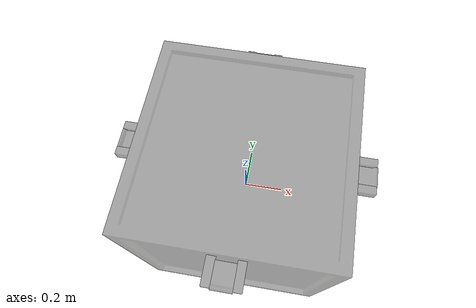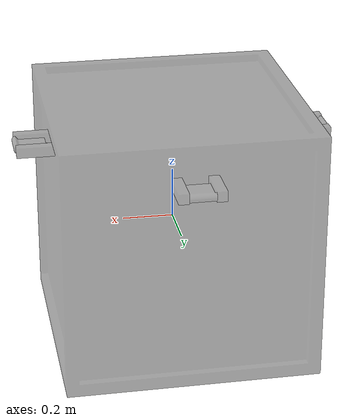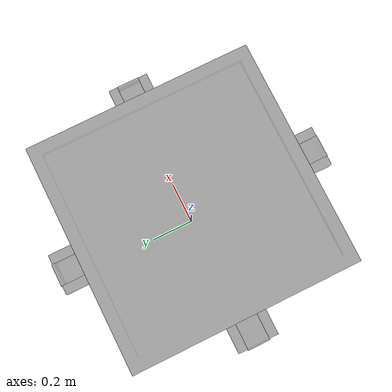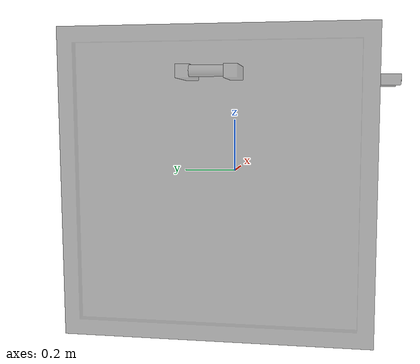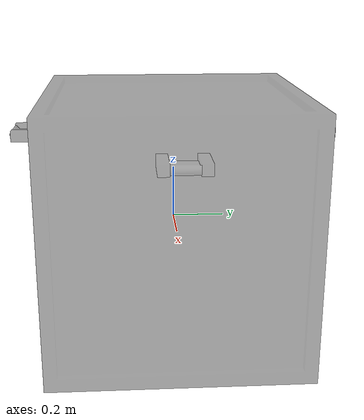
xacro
<?xml version="1.0"?>

<robot name="box_description" xmlns:xacro="http://www.ros.org/wiki/xacro">
  <!-- Define properties -->
  <xacro:property name="box_mass" value="1"/>
  <xacro:property name="box_size" value="1"/>
  <xacro:property name="handle_radius" value="0.015"/>
  <xacro:property name="handle_length" value="0.14"/>
  <xacro:property name="handle_offset" value="0.6"/>

  <!-- Material definitions -->
  <material name="dark_gray">
    <color rgba="0.3 0.3 0.3 0.5"/>
  </material>

  <!-- Box link -->
  <link name="box">
    <inertial>
      <mass value="${box_mass}"/>
      <origin xyz="0 0 0" rpy="0 0 0"/>
      <inertia ixx="0.16670" ixy="0.0" ixz="0.0" iyy="0.16670" iyz="0.0" izz="0.16670"/>
    </inertial>
    <visual>
      <geometry>
        <mesh filename="package://ocs2_multi_robot/assets/robot/b1z1_description/meshes/box.stl"/>
      </geometry>
      <origin xyz="0 0 0" rpy="0 0 0"/>
      <material name="dark_gray"/>
    </visual>
    <collision>
      <geometry>
        <mesh filename="package://ocs2_multi_robot/assets/robot/b1z1_description/meshes/box.stl"/>
      </geometry>
      <origin xyz="0 0 0" rpy="0 0 0"/>
    </collision>
  </link>

  <!-- Add an IMU sensor to the box -->

  <joint name="imu_joint" type="fixed">
      <parent link="box"/>
      <child link="box_imu_link"/>
      <origin rpy="0 0 0" xyz="0 0 0"/>
  </joint>

  <link name="box_imu_link">
      <inertial>
          <mass value="0.001"/>
          <origin rpy="0 0 0" xyz="0 0 0"/>
          <inertia ixx="0.0001" ixy="0" ixz="0" iyy="0.0001" iyz="0" izz="0.0001"/>
      </inertial>
      <visual>
          <origin rpy="0 0 0" xyz="0 0 0"/>
          <geometry>
              <box size="0.001 0.001 0.001"/>
          </geometry>
          <material name="red"/>
      </visual>
      <collision>
          <origin rpy="0 0 0" xyz="0 0 0"/>
          <geometry>
              <box size=".001 .001 .001"/>
          </geometry>
      </collision>
  </link>

  <gazebo reference="box_imu_link">
      <gravity>true</gravity>
      <sensor name="imu_sensor" type="imu">
          <always_on>true</always_on>
          <update_rate>1000</update_rate>
          <visualize>true</visualize>
          <topic>__default_topic__</topic>
          <plugin filename="libgazebo_ros_imu_sensor.so" name="imu_plugin">
              <topicName>cargo_imu</topicName>
              <bodyName>imu_link</bodyName>
              <updateRateHZ>1000.0</updateRateHZ>
              <gaussianNoise>0.0</gaussianNoise>
              <xyzOffset>0 0 0</xyzOffset>
              <rpyOffset>0 0 0</rpyOffset>
              <frameName>imu_link</frameName>
          </plugin>
          <pose>0 0 0 0 0 0</pose>
      </sensor>
  </gazebo>

  <!-- Left handle -->
  <link name="left_handle">
    <inertial>
      <mass value="0.01"/>
      <origin xyz="0 0 0" rpy="1.5708 0 1.5708"/>
      <inertia ixx="0.001" ixy="0.0" ixz="0.0" iyy="0.001" iyz="0.0" izz="0.001"/>
    </inertial>
    <visual>
      <geometry>
        <mesh filename="package://ocs2_multi_robot/assets/robot/b1z1_description/meshes/handle.STL" scale="0.001 0.001 0.001"/>
      </geometry>
      <origin xyz="0 0 0" rpy="1.5708 0 1.5708"/>
      <material name="dark_gray"/>
    </visual>
    <collision>
      <geometry>
        <mesh filename="package://ocs2_multi_robot/assets/robot/b1z1_description/meshes/handle.STL" scale="0.001 0.001 0.001"/>
      </geometry>
      <origin xyz="0 0 0" rpy="1.5708 0 1.5708"/>
    </collision>
  </link>

  <!-- Add Gazebo friction properties -->
  <gazebo reference="left_handle">
    <material>Gazebo/DarkGrey</material>
    <mu1>1.5</mu1>          <!-- Friction coefficient in first direction -->
    <mu2>1.5</mu2>          <!-- Friction coefficient in second direction -->
    <kp>1000000.0</kp>      <!-- Contact stiffness -->
    <kd>100.0</kd>          <!-- Contact damping -->
    <minDepth>0.001</minDepth>
    <maxVel>0.1</maxVel>
  </gazebo>

  <!-- Right handle -->
  <link name="right_handle">
    <inertial>
      <mass value="0.01"/>
      <origin xyz="0 0 0" rpy="1.5708 0 -1.5708"/>
      <inertia ixx="0.001" ixy="0.0" ixz="0.0" iyy="0.001" iyz="0.0" izz="0.001"/>
    </inertial>
    <visual>
      <geometry>
        <mesh filename="package://ocs2_multi_robot/assets/robot/b1z1_description/meshes/handle.STL" scale="0.001 0.001 0.001"/>
      </geometry>
      <origin xyz="0 0 0" rpy="1.5708 0 -1.5708"/>
      <material name="dark_gray"/>
    </visual>
    <collision>
      <geometry>
        <mesh filename="package://ocs2_multi_robot/assets/robot/b1z1_description/meshes/handle.STL" scale="0.001 0.001 0.001"/>
      </geometry>
      <origin xyz="0 0 0" rpy="1.5708 0 -1.5708"/>
    </collision>
  </link>

    <!-- Add Gazebo friction properties -->
  <gazebo reference="right_handle">
    <material>Gazebo/DarkGrey</material>
    <mu1>1.5</mu1>          <!-- Friction coefficient in first direction -->
    <mu2>1.5</mu2>          <!-- Friction coefficient in second direction -->
    <kp>1000000.0</kp>      <!-- Contact stiffness -->
    <kd>100.0</kd>          <!-- Contact damping -->
    <minDepth>0.001</minDepth>
    <maxVel>0.1</maxVel>
  </gazebo>

  <!-- Left handle end cube 1 -->
  <link name="left_handle_cube1">
    <inertial>
      <mass value="0.001"/>
      <origin xyz="0 0 0" rpy="0 0 0"/>
      <inertia ixx="0.0001" ixy="0.0" ixz="0.0" iyy="0.0001" iyz="0.0" izz="0.0001"/>
    </inertial>
    <visual>
      <geometry>
        <box size="0.15 0.04 0.04"/>
      </geometry>
      <origin xyz="0.055 0 0" rpy="0 0 0"/>
      <material name="dark_gray"/>
    </visual>
    <collision>
      <geometry>
        <box size="0.15 0.04 0.04"/>
      </geometry>
      <origin xyz="0.055 0 0" rpy="0 0 0"/>
    </collision>
  </link>

  <!-- Left handle end cube 2 -->
  <link name="left_handle_cube2">
    <inertial>
      <mass value="0.001"/>
      <origin xyz="0 0 0" rpy="0 0 0"/>
      <inertia ixx="0.0001" ixy="0.0" ixz="0.0" iyy="0.0001" iyz="0.0" izz="0.0001"/>
    </inertial>
    <visual>
      <geometry>
        <box size="0.15 0.04 0.04"/>
      </geometry>
      <origin xyz="0.055 0 0" rpy="0 0 0"/>
      <material name="dark_gray"/>
    </visual>
    <collision>
      <geometry>
        <box size="0.15 0.04 0.04"/>
      </geometry>
      <origin xyz="0.055 0 0" rpy="0 0 0"/>
    </collision>
  </link>

  <!-- Right handle end cube 1 -->
  <link name="right_handle_cube1">
    <inertial>
      <mass value="0.001"/>
      <origin xyz="0 0 0" rpy="0 0 0"/>
      <inertia ixx="0.0001" ixy="0.0" ixz="0.0" iyy="0.0001" iyz="0.0" izz="0.0001"/>
    </inertial>
    <visual>
      <geometry>
        <box size="0.15 0.04 0.04"/>
      </geometry>
      <origin xyz="-0.055 0 0" rpy="0 0 0"/>
      <material name="dark_gray"/>
    </visual>
    <collision>
      <geometry>
        <box size="0.15 0.04 0.04"/>
      </geometry>
      <origin xyz="-0.055 0 0" rpy="0 0 0"/>
    </collision>
  </link>

  <!-- Right handle end cube 2 -->
  <link name="right_handle_cube2">
    <inertial>
      <mass value="0.001"/>
      <origin xyz="0 0 0" rpy="0 0 0"/>
      <inertia ixx="0.0001" ixy="0.0" ixz="0.0" iyy="0.0001" iyz="0.0" izz="0.0001"/>
    </inertial>
    <visual>
      <geometry>
        <box size="0.15 0.04 0.04"/>
      </geometry>
      <origin xyz="-0.055 0 0" rpy="0 0 0"/>
      <material name="dark_gray"/>
    </visual>
    <collision>
      <geometry>
        <box size="0.15 0.04 0.04"/>
      </geometry>
      <origin xyz="-0.055 0 0" rpy="0 0 0"/>
    </collision>
  </link>

  <!-- Front handle -->
  <link name="front_handle">
    <inertial>
      <mass value="0.01"/>
      <origin xyz="0 0 0" rpy="1.5708 0 0"/>
      <inertia ixx="0.001" ixy="0.0" ixz="0.0" iyy="0.001" iyz="0.0" izz="0.001"/>
    </inertial>
    <visual>
      <geometry>
        <mesh filename="package://ocs2_multi_robot/assets/robot/b1z1_description/meshes/handle.STL" scale="0.001 0.001 0.001"/>
      </geometry>
      <origin xyz="0 0 0" rpy="1.5708 0 0"/>
      <material name="dark_gray"/>
    </visual>
    <collision>
      <geometry>
        <mesh filename="package://ocs2_multi_robot/assets/robot/b1z1_description/meshes/handle.STL" scale="0.001 0.001 0.001"/>
      </geometry>
      <origin xyz="0 0 0" rpy="1.5708 0 0"/>
    </collision>
  </link>

  <gazebo reference="front_handle">
    <material>Gazebo/DarkGrey</material>
    <mu1>1.5</mu1>
    <mu2>1.5</mu2>
    <kp>1000000.0</kp>
    <kd>100.0</kd>
    <minDepth>0.001</minDepth>
    <maxVel>0.1</maxVel>
  </gazebo>

  <!-- Back handle -->
  <link name="back_handle">
    <inertial>
      <mass value="0.01"/>
      <origin xyz="0 0 0" rpy="1.5708 0 3.14159"/>
      <inertia ixx="0.001" ixy="0.0" ixz="0.0" iyy="0.001" iyz="0.0" izz="0.001"/>
    </inertial>
    <visual>
      <geometry>
        <mesh filename="package://ocs2_multi_robot/assets/robot/b1z1_description/meshes/handle.STL" scale="0.001 0.001 0.001"/>
      </geometry>
      <origin xyz="0 0 0" rpy="1.5708 0 3.14159"/>
      <material name="dark_gray"/>
    </visual>
    <collision>
      <geometry>
        <mesh filename="package://ocs2_multi_robot/assets/robot/b1z1_description/meshes/handle.STL" scale="0.001 0.001 0.001"/>
      </geometry>
      <origin xyz="0 0 0" rpy="1.5708 0 3.14159"/>
    </collision>
  </link>

  <gazebo reference="back_handle">
    <material>Gazebo/DarkGrey</material>
    <mu1>1.5</mu1>
    <mu2>1.5</mu2>
    <kp>1000000.0</kp>
    <kd>100.0</kd>
    <minDepth>0.001</minDepth>
    <maxVel>0.1</maxVel>
  </gazebo>

  <!-- Front handle end cube 1 -->
  <link name="front_handle_cube1">
    <inertial>
      <mass value="0.001"/>
      <origin xyz="0 0 0" rpy="0 0 0"/>
      <inertia ixx="0.0001" ixy="0.0" ixz="0.0" iyy="0.0001" iyz="0.0" izz="0.0001"/>
    </inertial>
    <visual>
      <geometry>
        <box size="0.04 0.15 0.04"/>
      </geometry>
      <origin xyz="0 -0.055 0" rpy="0 0 0"/>
      <material name="dark_gray"/>
    </visual>
    <collision>
      <geometry>
        <box size="0.04 0.15 0.04"/>
      </geometry>
      <origin xyz="0 -0.055 0" rpy="0 0 0"/>
    </collision>
  </link>

  <!-- Front handle end cube 2 -->
  <link name="front_handle_cube2">
    <inertial>
      <mass value="0.001"/>
      <origin xyz="0 0 0" rpy="0 0 0"/>
      <inertia ixx="0.0001" ixy="0.0" ixz="0.0" iyy="0.0001" iyz="0.0" izz="0.0001"/>
    </inertial>
    <visual>
      <geometry>
        <box size="0.04 0.15 0.04"/>
      </geometry>
      <origin xyz="0 -0.055 0" rpy="0 0 0"/>
      <material name="dark_gray"/>
    </visual>
    <collision>
      <geometry>
        <box size="0.04 0.15 0.04"/>
      </geometry>
      <origin xyz="0 -0.055 0" rpy="0 0 0"/>
    </collision>
  </link>

  <!-- Back handle end cube 1 -->
  <link name="back_handle_cube1">
    <inertial>
      <mass value="0.001"/>
      <origin xyz="0 0 0" rpy="0 0 0"/>
      <inertia ixx="0.0001" ixy="0.0" ixz="0.0" iyy="0.0001" iyz="0.0" izz="0.0001"/>
    </inertial>
    <visual>
      <geometry>
        <box size="0.04 0.15 0.04"/>
      </geometry>
      <origin xyz="0 0.055 0" rpy="0 0 0"/>
      <material name="dark_gray"/>
    </visual>
    <collision>
      <geometry>
        <box size="0.04 0.15 0.04"/>
      </geometry>
      <origin xyz="0 0.055 0" rpy="0 0 0"/>
    </collision>
  </link>

  <!-- Back handle end cube 2 -->
  <link name="back_handle_cube2">
    <inertial>
      <mass value="0.001"/>
      <origin xyz="0 0 0" rpy="0 0 0"/>
      <inertia ixx="0.0001" ixy="0.0" ixz="0.0" iyy="0.0001" iyz="0.0" izz="0.0001"/>
    </inertial>
    <visual>
      <geometry>
        <box size="0.04 0.15 0.04"/>
      </geometry>
      <origin xyz="0 0.055 0" rpy="0 0 0"/>
      <material name="dark_gray"/>
    </visual>
    <collision>
      <geometry>
        <box size="0.04 0.15 0.04"/>
      </geometry>
      <origin xyz="0 0.055 0" rpy="0 0 0"/>
    </collision>
  </link>

  <!-- Joints -->
  <joint name="left_handle_joint" type="fixed">
    <parent link="box"/>
    <child link="left_handle"/>
    <origin xyz="${-handle_offset} 0 0.35" rpy="0 0 0"/>
    <dynamics friction="0.8"/>
  </joint>

  <joint name="right_handle_joint" type="fixed">
    <parent link="box"/>
    <child link="right_handle"/>
    <origin xyz="${handle_offset} 0 0.35" rpy="0 0 0"/>
    <dynamics friction="0.8"/>
  </joint>

  <joint name="front_handle_joint" type="fixed">
    <parent link="box"/>
    <child link="front_handle"/>
    <origin xyz="0 ${handle_offset} 0.35" rpy="0 0 0"/>
    <dynamics friction="0.8"/>
  </joint>

  <joint name="back_handle_joint" type="fixed">
    <parent link="box"/>
    <child link="back_handle"/>
    <origin xyz="0 ${-handle_offset} 0.35" rpy="0 0 0"/>
    <dynamics friction="0.8"/>
  </joint>

  <!-- Left handle cube joints -->
  <joint name="left_handle_cube1_joint" type="fixed">
    <parent link="left_handle"/>
    <child link="left_handle_cube1"/>
    <origin xyz="0 ${handle_length/2} 0" rpy="0 0 0"/>
  </joint>

  <joint name="left_handle_cube2_joint" type="fixed">
    <parent link="left_handle"/>
    <child link="left_handle_cube2"/>
    <origin xyz="0 ${-handle_length/2} 0" rpy="0 0 0"/>
  </joint>

  <!-- Right handle cube joints -->
  <joint name="right_handle_cube1_joint" type="fixed">
    <parent link="right_handle"/>
    <child link="right_handle_cube1"/>
    <origin xyz="0 ${handle_length/2} 0" rpy="0 0 0"/>
  </joint>

  <joint name="right_handle_cube2_joint" type="fixed">
    <parent link="right_handle"/>
    <child link="right_handle_cube2"/>
    <origin xyz="0 ${-handle_length/2} 0" rpy="0 0 0"/>
  </joint>

  <!-- Front handle cube joints -->
  <joint name="front_handle_cube1_joint" type="fixed">
    <parent link="front_handle"/>
    <child link="front_handle_cube1"/>
    <origin xyz="${handle_length/2} 0 0" rpy="0 0 0"/>
  </joint>

  <joint name="front_handle_cube2_joint" type="fixed">
    <parent link="front_handle"/>
    <child link="front_handle_cube2"/>
    <origin xyz="${-handle_length/2} 0 0" rpy="0 0 0"/>
  </joint>

  <!-- Back handle cube joints -->
  <joint name="back_handle_cube1_joint" type="fixed">
    <parent link="back_handle"/>
    <child link="back_handle_cube1"/>
    <origin xyz="${handle_length/2} 0 0" rpy="0 0 0"/>
  </joint>

  <joint name="back_handle_cube2_joint" type="fixed">
    <parent link="back_handle"/>
    <child link="back_handle_cube2"/>
    <origin xyz="${-handle_length/2} 0 0" rpy="0 0 0"/>
  </joint>
</robot>
